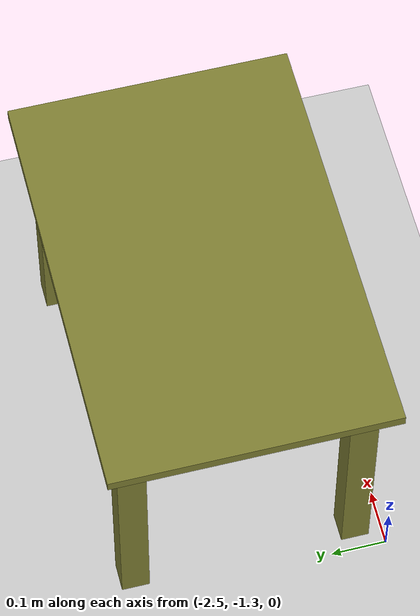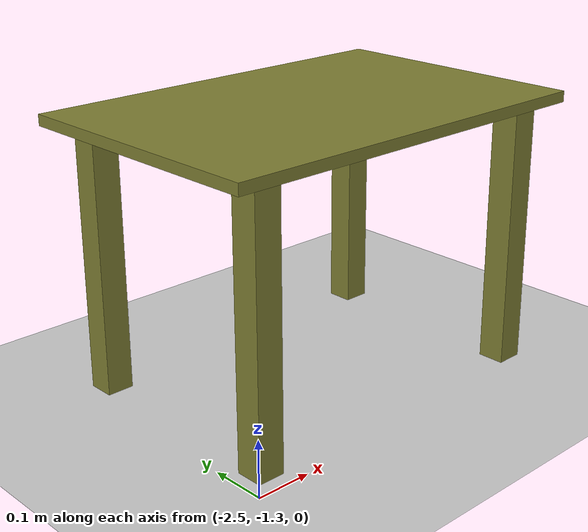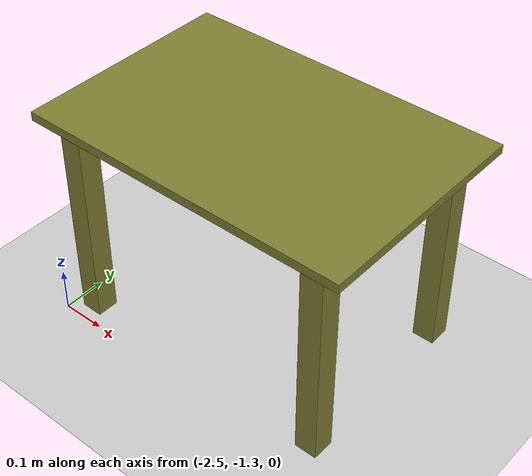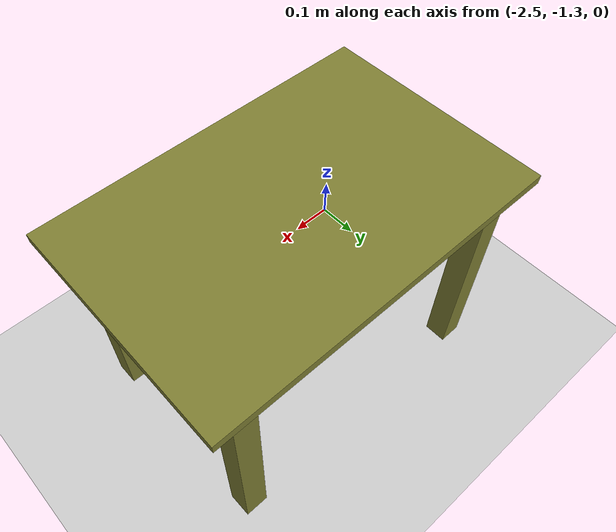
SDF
<sdf version="1.6">
 <world name="default">
  <model name="ground_plane">
   <static>1</static>
   <link name="link">
    <collision name="collision">
     <geometry><plane><normal>0 0 1</normal><size>100 100</size></plane></geometry>
     <surface>
      <contact><collide_bitmask>65535</collide_bitmask></contact>
      <friction><ode><mu>100</mu><mu2>50</mu2></ode></friction>
     </surface>
    </collision>
    <visual name="visual">
     <cast_shadows>0</cast_shadows>
     <geometry><plane><normal>0 0 1</normal><size>100 100</size></plane></geometry>
     <material>
      <script><uri>file://media/materials/scripts/gazebo.material</uri><name>Gazebo/Grey</name></script>
     </material>
    </visual>
   </link>
  </model>
  <model name="my_table">
   <link name="link_0">
    <pose>0.072072 -4.79324 0.208333 0 -0 0</pose>
    <inertial>
     <mass>1</mass>
     <inertia>
      <ixx>0.166667</ixx>
      <ixy>0</ixy>
      <ixz>0</ixz>
      <iyy>0.166667</iyy>
      <iyz>0</iyz>
      <izz>0.166667</izz>
     </inertia>
    </inertial>
    <visual name="visual">
     <geometry><box><size>0.5 0.75 0.02</size></box></geometry>
     <material>
      <lighting>1</lighting>
      <script><uri>file://media/materials/scripts/gazebo.material</uri><name>Gazebo/Grey</name></script>
      <shader type="pixel"><normal_map>__default__</normal_map></shader>
      <ambient>0.5 0.5 0.2 1</ambient>
      <diffuse>0.5 0.5 0.2 1</diffuse>
      <specular>0.01 0.01 0.01 1</specular>
      <emissive>0 0 0 1</emissive>
     </material>
    </visual>
    <collision name="collision">
     <geometry><box><size>0.5 0.75 0.02</size></box></geometry>
     <surface>
      <friction>
       <ode><mu>1</mu><mu2>1</mu2><fdir1>0 0 0</fdir1><slip1>0</slip1><slip2>0</slip2></ode>
       <torsional>
        <coefficient>1</coefficient>
        <patch_radius>0</patch_radius>
        <surface_radius>0</surface_radius>
        <use_patch_radius>1</use_patch_radius>
        <ode><slip>0</slip></ode>
       </torsional>
      </friction>
      <bounce><restitution_coefficient>0</restitution_coefficient><threshold>1e+06</threshold></bounce>
      <contact>
       <collide_without_contact>0</collide_without_contact>
       <collide_without_contact_bitmask>1</collide_without_contact_bitmask>
       <collide_bitmask>1</collide_bitmask>
       <ode>
        <soft_cfm>0</soft_cfm>
        <soft_erp>0.2</soft_erp>
        <kp>1e+13</kp>
        <kd>1</kd>
        <max_vel>0.01</max_vel>
        <min_depth>0</min_depth>
       </ode>
       <bullet>
        <split_impulse>1</split_impulse>
        <split_impulse_penetration_threshold>-0.01</split_impulse_penetration_threshold>
        <soft_cfm>0</soft_cfm>
        <soft_erp>0.2</soft_erp>
        <kp>1e+13</kp>
        <kd>1</kd>
       </bullet>
      </contact>
     </surface>
    </collision>
   </link>
   <link name="link_0_clone">
    <pose>0.272072 -4.49324 -0.041667 0 -0 0</pose>
    <inertial>
     <mass>1</mass>
     <inertia>
      <ixx>0.166667</ixx>
      <ixy>0</ixy>
      <ixz>0</ixz>
      <iyy>0.166667</iyy>
      <iyz>0</iyz>
      <izz>0.166667</izz>
     </inertia>
    </inertial>
    <visual name="visual">
     <geometry><box><size>0.05 0.05 0.49</size></box></geometry>
     <material>
      <lighting>1</lighting>
      <script><uri>file://media/materials/scripts/gazebo.material</uri><name>Gazebo/Grey</name></script>
      <shader type="pixel"><normal_map>__default__</normal_map></shader>
      <ambient>0.5 0.5 0.2 1</ambient>
      <diffuse>0.5 0.5 0.2 1</diffuse>
      <specular>0.01 0.01 0.01 1</specular>
      <emissive>0 0 0 1</emissive>
     </material>
    </visual>
    <collision name="collision">
     <geometry><box><size>0.05 0.05 0.49</size></box></geometry>
     <surface>
      <friction>
       <ode><mu>1</mu><mu2>1</mu2><fdir1>0 0 0</fdir1><slip1>0</slip1><slip2>0</slip2></ode>
       <torsional>
        <coefficient>1</coefficient>
        <patch_radius>0</patch_radius>
        <surface_radius>0</surface_radius>
        <use_patch_radius>1</use_patch_radius>
        <ode><slip>0</slip></ode>
       </torsional>
      </friction>
      <bounce><restitution_coefficient>0</restitution_coefficient><threshold>1e+06</threshold></bounce>
      <contact>
       <collide_without_contact>0</collide_without_contact>
       <collide_without_contact_bitmask>1</collide_without_contact_bitmask>
       <collide_bitmask>1</collide_bitmask>
       <ode>
        <soft_cfm>0</soft_cfm>
        <soft_erp>0.2</soft_erp>
        <kp>1e+13</kp>
        <kd>1</kd>
        <max_vel>0.01</max_vel>
        <min_depth>0</min_depth>
       </ode>
       <bullet>
        <split_impulse>1</split_impulse>
        <split_impulse_penetration_threshold>-0.01</split_impulse_penetration_threshold>
        <soft_cfm>0</soft_cfm>
        <soft_erp>0.2</soft_erp>
        <kp>1e+13</kp>
        <kd>1</kd>
       </bullet>
      </contact>
     </surface>
    </collision>
   </link>
   <link name="link_0_clone_clone_0">
    <pose>-0.127928 -4.49324 -0.041667 0 -0 0</pose>
    <inertial>
     <mass>1</mass>
     <inertia>
      <ixx>0.166667</ixx>
      <ixy>0</ixy>
      <ixz>0</ixz>
      <iyy>0.166667</iyy>
      <iyz>0</iyz>
      <izz>0.166667</izz>
     </inertia>
    </inertial>
    <visual name="visual">
     <geometry><box><size>0.05 0.05 0.49</size></box></geometry>
     <material>
      <lighting>1</lighting>
      <script><uri>file://media/materials/scripts/gazebo.material</uri><name>Gazebo/Grey</name></script>
      <shader type="pixel"><normal_map>__default__</normal_map></shader>
      <ambient>0.5 0.5 0.2 1</ambient>
      <diffuse>0.5 0.5 0.2 1</diffuse>
      <specular>0.01 0.01 0.01 1</specular>
      <emissive>0 0 0 1</emissive>
     </material>
    </visual>
    <collision name="collision">
     <geometry><box><size>0.05 0.05 0.49</size></box></geometry>
     <surface>
      <friction>
       <ode><mu>1</mu><mu2>1</mu2><fdir1>0 0 0</fdir1><slip1>0</slip1><slip2>0</slip2></ode>
       <torsional>
        <coefficient>1</coefficient>
        <patch_radius>0</patch_radius>
        <surface_radius>0</surface_radius>
        <use_patch_radius>1</use_patch_radius>
        <ode><slip>0</slip></ode>
       </torsional>
      </friction>
      <bounce><restitution_coefficient>0</restitution_coefficient><threshold>1e+06</threshold></bounce>
      <contact>
       <collide_without_contact>0</collide_without_contact>
       <collide_without_contact_bitmask>1</collide_without_contact_bitmask>
       <collide_bitmask>1</collide_bitmask>
       <ode>
        <soft_cfm>0</soft_cfm>
        <soft_erp>0.2</soft_erp>
        <kp>1e+13</kp>
        <kd>1</kd>
        <max_vel>0.01</max_vel>
        <min_depth>0</min_depth>
       </ode>
       <bullet>
        <split_impulse>1</split_impulse>
        <split_impulse_penetration_threshold>-0.01</split_impulse_penetration_threshold>
        <soft_cfm>0</soft_cfm>
        <soft_erp>0.2</soft_erp>
        <kp>1e+13</kp>
        <kd>1</kd>
       </bullet>
      </contact>
     </surface>
    </collision>
   </link>
   <link name="link_0_clone_clone_1">
    <pose>0.272072 -5.09324 -0.041667 0 -0 0</pose>
    <inertial>
     <mass>1</mass>
     <inertia>
      <ixx>0.166667</ixx>
      <ixy>0</ixy>
      <ixz>0</ixz>
      <iyy>0.166667</iyy>
      <iyz>0</iyz>
      <izz>0.166667</izz>
     </inertia>
    </inertial>
    <visual name="visual">
     <geometry><box><size>0.05 0.05 0.49</size></box></geometry>
     <material>
      <lighting>1</lighting>
      <script><uri>file://media/materials/scripts/gazebo.material</uri><name>Gazebo/Grey</name></script>
      <shader type="pixel"><normal_map>__default__</normal_map></shader>
      <ambient>0.5 0.5 0.2 1</ambient>
      <diffuse>0.5 0.5 0.2 1</diffuse>
      <specular>0.01 0.01 0.01 1</specular>
      <emissive>0 0 0 1</emissive>
     </material>
    </visual>
    <collision name="collision">
     <geometry><box><size>0.05 0.05 0.49</size></box></geometry>
     <surface>
      <friction>
       <ode><mu>1</mu><mu2>1</mu2><fdir1>0 0 0</fdir1><slip1>0</slip1><slip2>0</slip2></ode>
       <torsional>
        <coefficient>1</coefficient>
        <patch_radius>0</patch_radius>
        <surface_radius>0</surface_radius>
        <use_patch_radius>1</use_patch_radius>
        <ode><slip>0</slip></ode>
       </torsional>
      </friction>
      <bounce><restitution_coefficient>0</restitution_coefficient><threshold>1e+06</threshold></bounce>
      <contact>
       <collide_without_contact>0</collide_without_contact>
       <collide_without_contact_bitmask>1</collide_without_contact_bitmask>
       <collide_bitmask>1</collide_bitmask>
       <ode>
        <soft_cfm>0</soft_cfm>
        <soft_erp>0.2</soft_erp>
        <kp>1e+13</kp>
        <kd>1</kd>
        <max_vel>0.01</max_vel>
        <min_depth>0</min_depth>
       </ode>
       <bullet>
        <split_impulse>1</split_impulse>
        <split_impulse_penetration_threshold>-0.01</split_impulse_penetration_threshold>
        <soft_cfm>0</soft_cfm>
        <soft_erp>0.2</soft_erp>
        <kp>1e+13</kp>
        <kd>1</kd>
       </bullet>
      </contact>
     </surface>
    </collision>
   </link>
   <link name="link_0_clone_clone_2">
    <pose>-0.127928 -5.09324 -0.041667 0 -0 0</pose>
    <inertial>
     <mass>1</mass>
     <inertia>
      <ixx>0.166667</ixx>
      <ixy>0</ixy>
      <ixz>0</ixz>
      <iyy>0.166667</iyy>
      <iyz>0</iyz>
      <izz>0.166667</izz>
     </inertia>
    </inertial>
    <visual name="visual">
     <geometry><box><size>0.05 0.05 0.49</size></box></geometry>
     <material>
      <lighting>1</lighting>
      <script><uri>file://media/materials/scripts/gazebo.material</uri><name>Gazebo/Grey</name></script>
      <shader type="pixel"><normal_map>__default__</normal_map></shader>
      <ambient>0.5 0.5 0.2 1</ambient>
      <diffuse>0.5 0.5 0.2 1</diffuse>
      <specular>0.01 0.01 0.01 1</specular>
      <emissive>0 0 0 1</emissive>
     </material>
    </visual>
    <collision name="collision">
     <geometry><box><size>0.05 0.05 0.49</size></box></geometry>
     <surface>
      <friction>
       <ode><mu>1</mu><mu2>1</mu2><fdir1>0 0 0</fdir1><slip1>0</slip1><slip2>0</slip2></ode>
       <torsional>
        <coefficient>1</coefficient>
        <patch_radius>0</patch_radius>
        <surface_radius>0</surface_radius>
        <use_patch_radius>1</use_patch_radius>
        <ode><slip>0</slip></ode>
       </torsional>
      </friction>
      <bounce><restitution_coefficient>0</restitution_coefficient><threshold>1e+06</threshold></bounce>
      <contact>
       <collide_without_contact>0</collide_without_contact>
       <collide_without_contact_bitmask>1</collide_without_contact_bitmask>
       <collide_bitmask>1</collide_bitmask>
       <ode>
        <soft_cfm>0</soft_cfm>
        <soft_erp>0.2</soft_erp>
        <kp>1e+13</kp>
        <kd>1</kd>
        <max_vel>0.01</max_vel>
        <min_depth>0</min_depth>
       </ode>
       <bullet>
        <split_impulse>1</split_impulse>
        <split_impulse_penetration_threshold>-0.01</split_impulse_penetration_threshold>
        <soft_cfm>0</soft_cfm>
        <soft_erp>0.2</soft_erp>
        <kp>1e+13</kp>
        <kd>1</kd>
       </bullet>
      </contact>
     </surface>
    </collision>
   </link>
   <joint name="link_0_JOINT_4" type="fixed">
    <parent>link_0</parent>
    <child>link_0_clone</child>
    <physics>
     <ode><limit><cfm>0</cfm><erp>0.2</erp></limit><suspension><cfm>0</cfm><erp>0.2</erp></suspension></ode>
    </physics>
   </joint>
   <joint name="link_0_JOINT_5" type="fixed">
    <parent>link_0</parent>
    <child>link_0_clone_clone_0</child>
    <physics>
     <ode><limit><cfm>0</cfm><erp>0.2</erp></limit><suspension><cfm>0</cfm><erp>0.2</erp></suspension></ode>
    </physics>
   </joint>
   <joint name="link_0_JOINT_6" type="fixed">
    <parent>link_0</parent>
    <child>link_0_clone_clone_1</child>
    <physics>
     <ode><limit><cfm>0</cfm><erp>0.2</erp></limit><suspension><cfm>0</cfm><erp>0.2</erp></suspension></ode>
    </physics>
   </joint>
   <joint name="link_0_JOINT_7" type="fixed">
    <parent>link_0</parent>
    <child>link_0_clone_clone_2</child>
    <physics>
     <ode><limit><cfm>0</cfm><erp>0.2</erp></limit><suspension><cfm>0</cfm><erp>0.2</erp></suspension></ode>
    </physics>
   </joint>
   <static>0</static>
   <pose>-6.94534 -1.12949 0.286655 -2e-06 -0 1.57271</pose>
  </model>
 </world>
</sdf>
